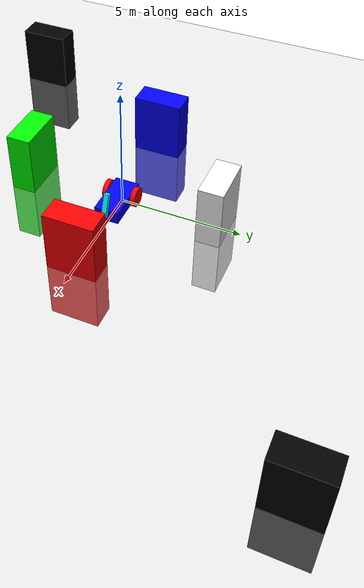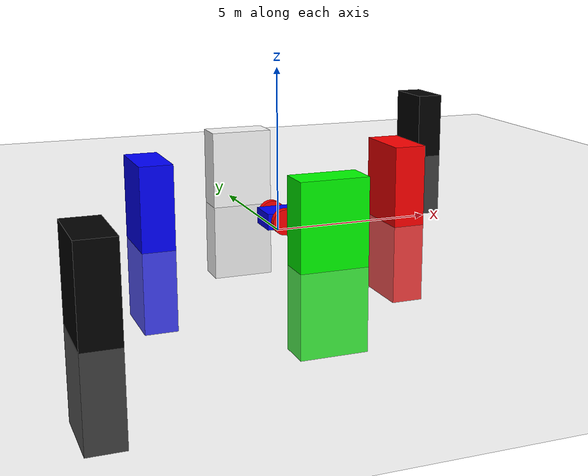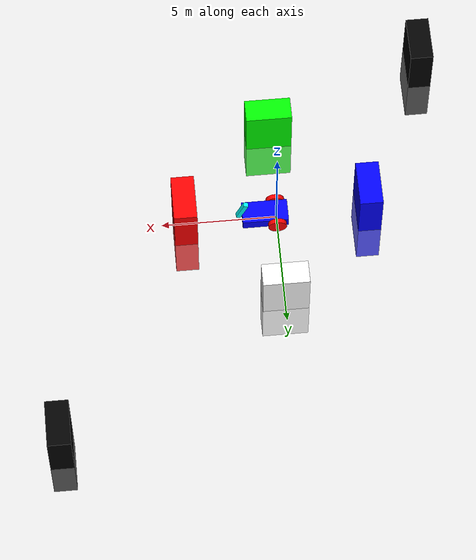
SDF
<?xml version="1.0" ?>
<sdf version="1.8">
    <world name="Moving_robot">
        <physics name="1ms" type="ignored">
            <max_step_size>0.001</max_step_size>
            <real_time_factor>1.0</real_time_factor>
        </physics>
        <plugin
            filename="gz-sim-physics-system"
            name="gz::sim::systems::Physics">
        </plugin>
        <plugin
            filename="gz-sim-user-commands-system"
            name="gz::sim::systems::UserCommands">
        </plugin>
        <plugin
            filename="gz-sim-scene-broadcaster-system"
            name="gz::sim::systems::SceneBroadcaster">
        </plugin>

        <light type="directional" name="sun">
            <cast_shadows>true</cast_shadows>
            <pose>0 0 10 0 0 0</pose>
            <diffuse>0.8 0.8 0.8 1</diffuse>
            <specular>0.2 0.2 0.2 1</specular>
            <attenuation>
                <range>1000</range>
                <constant>0.9</constant>
                <linear>0.01</linear>
                <quadratic>0.001</quadratic>
            </attenuation>
            <direction>-0.5 0.1 -0.9</direction>
        </light>

        <model name="ground_plane">
            <static>true</static>
            <link name="link">
                <collision name="collision">
                <geometry>
                    <plane>
                    <normal>0 0 1</normal>
                    </plane>
                </geometry>
                </collision>
                <visual name="visual">
                <geometry>
                    <plane>
                    <normal>0 0 1</normal>
                    <size>100 100</size>
                    </plane>
                </geometry>
                <material>
                    <ambient>0.8 0.8 0.8 1</ambient>
                    <diffuse>0.8 0.8 0.8 1</diffuse>
                    <specular>0.8 0.8 0.8 1</specular>
                </material>
                </visual>
            </link>
        </model>

	<model name="far_box1">
            <static>true</static>
            <pose relative_to='world'>10 10 0 0 0 0</pose>
            <link name="link_far_box1">
                <collision name="collision_far_box1">
                <geometry>
                    <box>
		    <size>1 2 5</size>
                    </box>
                </geometry>
                </collision>
                <visual name="visual">
                <geometry>
                    <box>
		    <size>1 2 5</size>
                    </box>
                </geometry>
                <material>
                    <ambient>0.0 0.0 0.0 1</ambient>
                    <diffuse>0.0 0.0 0.0 1</diffuse>
                    <specular>0.0 0.0 0.0 1</specular>
                </material>
                </visual>
	     </link>
	</model>

	<model name="far_box2">
            <static>true</static>
            <pose relative_to='world'>-7 -7 0 0 0 0</pose>
            <link name="link_far_box2">
                <collision name="collision_far_box2">
                <geometry>
                    <box>
		    <size>1 2 5</size>
                    </box>
                </geometry>
                </collision>
                <visual name="visual_far_box2">
                <geometry>
                    <box>
		    <size>1 2 5</size>
                    </box>
                </geometry>
                <material>
                    <ambient>0.0 0.0 0.0 1</ambient>
                    <diffuse>0.0 0.0 0.0 1</diffuse>
                    <specular>0.0 0.0 0.0 1</specular>
                </material>
                </visual>
	     </link>
	</model>
	<model name="red_ box">
            <static>true</static>
            <pose relative_to='world'>4 0 0 0 0 0</pose>
            <link name="link_red_box">
                <collision name="collision_red_box">
                <geometry>
                    <box>
		    <size>1 2 5</size>
                    </box>
                </geometry>
                </collision>
                <visual name="visual_red_box">
                <geometry>
                    <box>
		    <size>1 2 5</size>
                    </box>
                </geometry>
                <material>
                    <ambient>1.0 0.0 0.0 1</ambient>
                    <diffuse>1.0 0.0 0.0 1</diffuse>
                    <specular>1.0 0.0 0.0 1</specular>
                </material>
                </visual>
	     </link>
	</model>

	<model name="green_box">
            <static>true</static>
            <pose relative_to='world'>0 -4 0 0 0 0</pose>
            <link name="link_green_box">
                <collision name="collision_green_box">
                <geometry>
                    <box>
		    <size>2 1 5</size>
                    </box>
                </geometry>
                </collision>
                <visual name="visual_green_box">
                <geometry>
                    <box>
		    <size>2 1 5</size>
                    </box>
                </geometry>
                <material>
                    <ambient>0.0 1.0 0.0 1</ambient>
                    <diffuse>0.0 1.0 0.0 1</diffuse>
                    <specular>0.0 1.0 0.0 1</specular>
                </material>
                </visual>
	     </link>
	</model>

	<model name="blue_box">
            <static>true</static>
            <pose relative_to='world'>-4 0 0 0 0 0</pose>
            <link name="link_blue_box">
                <collision name="collision_blue_box">
                <geometry>
                    <box>
		    <size>1 2 5</size>
                    </box>
                </geometry>
                </collision>
                <visual name="visual_blue_box">
                <geometry>
                    <box>
		    <size>1 2 5</size>
                    </box>
                </geometry>
                <material>
                    <ambient>0.0 0.0 1.0 1</ambient>
                    <diffuse>0.0 0.0 1.0 1</diffuse>
                    <specular>0.0 0.0 1.0 1</specular>
                </material>
                </visual>
	     </link>
	</model>

	<model name="white_box">
            <static>true</static>
            <pose relative_to='world'>0 4 0 0 0 0</pose>
            <link name="link_white_box">
                <collision name="collision_white_box">
                <geometry>
                    <box>
		    <size>2 1 5</size>
                    </box>
                </geometry>
                </collision>
                <visual name="visual_white_box">
                <geometry>
                    <box>
		    <size>2 1 5</size>
                    </box>
                </geometry>
                <material>
                    <ambient>1.0 1.0 1.0 1</ambient>
                    <diffuse>1.0 1.0 1.0 1</diffuse>
                    <specular>1.0 1.0 1.0 1</specular>
                </material>
                </visual>
	     </link>
	</model>

        <model name='vehicle_blue' canonical_link='chassis'>
            <pose relative_to='world'>0 0 0 0 0 0</pose>

            <link name='chassis'>
                <pose relative_to='__model__'>0.5 0 0.4 0 0 0</pose>
                <inertial>
                    <mass>1.14395</mass>
                    <inertia>
                        <ixx>0.126164</ixx>
                        <ixy>0</ixy>
                        <ixz>0</ixz>
                        <iyy>0.416519</iyy>
                        <iyz>0</iyz>
                        <izz>0.481014</izz>
                    </inertia>
                </inertial>
                <visual name='visual'>
                    <geometry>
                        <box>
                            <size>2.0 1.0 0.5</size>
                        </box>
                    </geometry>
                    <material>
                        <ambient>0.0 0.0 1.0 1</ambient>
                        <diffuse>0.0 0.0 1.0 1</diffuse>
                        <specular>0.0 0.0 1.0 1</specular>
                    </material>
                </visual>
                <collision name='collision'>
                    <geometry>
                        <box>
                            <size>2.0 1.0 0.5</size>
                        </box>
                    </geometry>
                </collision>
                <sensor name='sensor_robot_lidar' type='gpu_lidar'>
                    <pose relative_to='chassis'>0 0 0.6 0 0 0</pose>
                    <plugin
                        filename="gz-sim-sensors-system"
                        name="gz::sim::systems::Sensors">
                        <render_engine>ogre2</render_engine>
                    </plugin>
                    <topic>lidar</topic>
                    <update_rate>10</update_rate>
                    <always_on>true</always_on>
                    <visualize>true</visualize>
                    <lidar>
                        <scan>
                            <horizontal>
                                <samples>360</samples>
                                <resolution>1</resolution>
                                <min_angle>-3.141592653589793</min_angle>
                                <max_angle>3.141592653589793</max_angle>
                            </horizontal>
                            <vertical>
                                <samples>1</samples>
                                <resolution>1</resolution>
                                <min_angle>0</min_angle>
                                <max_angle>0</max_angle>
                            </vertical>
                        </scan>
                        <range>
                            <min>0.2</min>
                            <max>15.0</max>
                            <resolution>0.01</resolution>
                        </range>
                    </lidar>
                </sensor>
            </link>

	    <link name='robot_camera'>
                <pose relative_to="chassis">1 0 0.5 0 -0.35 0</pose>
                <inertial>
                    <mass>0.114395</mass>
                    <inertia>
                        <ixx>0.126164</ixx>
                        <ixy>0</ixy>
                        <ixz>0</ixz>
                        <iyy>0.416519</iyy>
                        <iyz>0</iyz>
                        <izz>0.481014</izz>
                    </inertia>
                </inertial>
		<sensor name="sensor_robot_camera" type="camera">
			<plugin
                            filename="gz-sim-sensors-system"
                            name="gz::sim::systems::Sensors">
			    <render_engine>ogre2</render_engine>
                        </plugin>
			<always_on> true </always_on>
			<visualize> true </visualize>
			<update_rate> 10 </update_rate>
			<topic> camera/image_raw </topic>
			<camera name="camera_robot_camera">
				<horizontal_fov>1.547</horizontal_fov>
				<image>
					<width> 320 </width>
					<height> 200 </height>
				</image>
				<clip>
                                        <near>0.1</near>
                                        <far>10</far>
                                </clip>
			</camera>
		</sensor>
                <visual name='visual_robot_camera'>
                    <geometry>
                        <box>
                            <size>0.2 0.2 1</size>
                        </box>
                    </geometry>
                    <material>
                        <ambient>0.0 1.0 1.0 1</ambient>
                        <diffuse>0.0 1.0 1.0 1</diffuse>
                        <specular>0.0 1.0 1.0 1</specular>
                    </material>
                </visual>
                <collision name='collision_robot_camera'>
                    <geometry>
                        <box>
                            <size>0.2 0.2 1</size>
                        </box>
                    </geometry>
                </collision>
            </link>

            <link name='left_wheel'>
                <pose relative_to="chassis">-0.5 0.6 0 -1.5707 0 0</pose>
                <inertial>
                    <mass>2</mass>
                    <inertia>
                        <ixx>0.145833</ixx>
                        <ixy>0</ixy>
                        <ixz>0</ixz>
                        <iyy>0.145833</iyy>
                        <iyz>0</iyz>
                        <izz>0.125</izz>
                    </inertia>
                </inertial>
                <visual name='visual'>
                    <geometry>
                        <cylinder>
                            <radius>0.4</radius>
                            <length>0.2</length>
                        </cylinder>
                    </geometry>
                    <material>
                        <ambient>1.0 0.0 0.0 1</ambient>
                        <diffuse>1.0 0.0 0.0 1</diffuse>
                        <specular>1.0 0.0 0.0 1</specular>
                    </material>
                </visual>
                <collision name='collision'>
                    <geometry>
                        <cylinder>
                            <radius>0.4</radius>
                            <length>0.2</length>
                        </cylinder>
                    </geometry>
                </collision>
            </link>

            <link name='right_wheel'>
                <pose relative_to="chassis">-0.5 -0.6 0 -1.5707 0 0</pose>
                <inertial>
                    <mass>1</mass>
                    <inertia>
                        <ixx>0.145833</ixx>
                        <ixy>0</ixy>
                        <ixz>0</ixz>
                        <iyy>0.145833</iyy>
                        <iyz>0</iyz>
                        <izz>0.125</izz>
                    </inertia>
                </inertial>
                <visual name='visual'>
                    <geometry>
                        <cylinder>
                            <radius>0.4</radius>
                            <length>0.2</length>
                        </cylinder>
                    </geometry>
                    <material>
                        <ambient>1.0 0.0 0.0 1</ambient>
                        <diffuse>1.0 0.0 0.0 1</diffuse>
                        <specular>1.0 0.0 0.0 1</specular>
                    </material>
                </visual>
                <collision name='collision'>
                    <geometry>
                        <cylinder>
                            <radius>0.4</radius>
                            <length>0.2</length>
                        </cylinder>
                    </geometry>
                </collision>
            </link>

            <frame name="caster_frame" attached_to='chassis'>
                <pose>0.8 0 -0.2 0 0 0</pose>
            </frame>

            <link name='caster'>
                <pose relative_to='caster_frame'/>
                <inertial>
                    <mass>1</mass>
                    <inertia>
                        <ixx>0.1</ixx>
                        <ixy>0</ixy>
                        <ixz>0</ixz>
                        <iyy>0.1</iyy>
                        <iyz>0</iyz>
                        <izz>0.1</izz>
                    </inertia>
                </inertial>
                <visual name='visual'>
                    <geometry>
                        <sphere>
                            <radius>0.2</radius>
                        </sphere>
                    </geometry>
                    <material>
                        <ambient>0.0 1 0.0 1</ambient>
                        <diffuse>0.0 1 0.0 1</diffuse>
                        <specular>0.0 1 0.0 1</specular>
                    </material>
                </visual>
                <collision name='collision'>
                    <geometry>
                        <sphere>
                            <radius>0.2</radius>
                        </sphere>
                    </geometry>
                </collision>
            </link>

            <joint name='camera_joint' type='fixed'>
                <pose relative_to='robot_camera'/>
                <parent>chassis</parent>
                <child>robot_camera</child>
                <axis>
                    <xyz expressed_in='__model__'>0 0 -0.5</xyz>
                    <limit>
                        <lower>-1.79769e+308</lower>
                        <upper>1.79769e+308</upper>
                    </limit>
                </axis>
            </joint>

            <joint name='left_wheel_joint' type='revolute'>
                <pose relative_to='left_wheel'/>
                <parent>chassis</parent>
                <child>left_wheel</child>
                <axis>
                    <xyz expressed_in='__model__'>0 1 0</xyz>
                    <limit>
                        <lower>-1.79769e+308</lower>
                        <upper>1.79769e+308</upper>
                    </limit>
                </axis>
            </joint>

            <joint name='right_wheel_joint' type='revolute'>
                <pose relative_to='right_wheel'/>
                <parent>chassis</parent>
                <child>right_wheel</child>
                <axis>
                    <xyz expressed_in='__model__'>0 1 0</xyz>
                    <limit>
                        <lower>-1.79769e+308</lower>
                        <upper>1.79769e+308</upper>
                    </limit>
                </axis>
            </joint>

            <joint name='caster_wheel' type='ball'>
                <parent>chassis</parent>
                <child>caster</child>
            </joint>

            <plugin
                filename="gz-sim-diff-drive-system"
                name="gz::sim::systems::DiffDrive">
                <left_joint>left_wheel_joint</left_joint>
                <right_joint>right_wheel_joint</right_joint>
                <wheel_separation>1.2</wheel_separation>
                <wheel_radius>0.4</wheel_radius>
                <odom_publish_frequency>50</odom_publish_frequency>
                <topic>cmd_vel</topic>
            </plugin>
        </model>

    </world>
</sdf>
